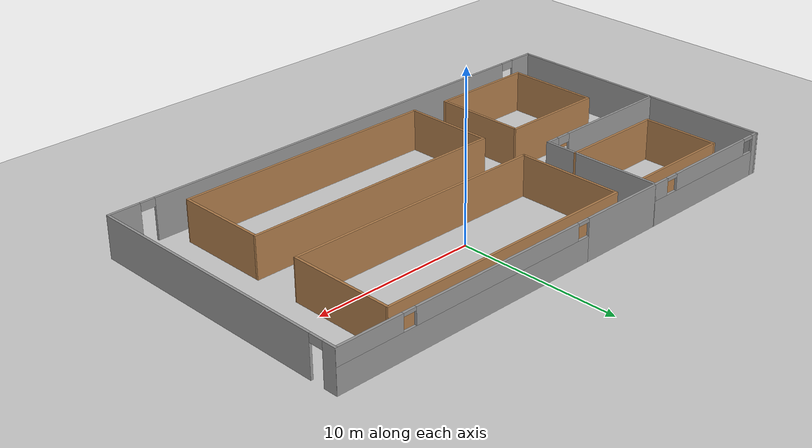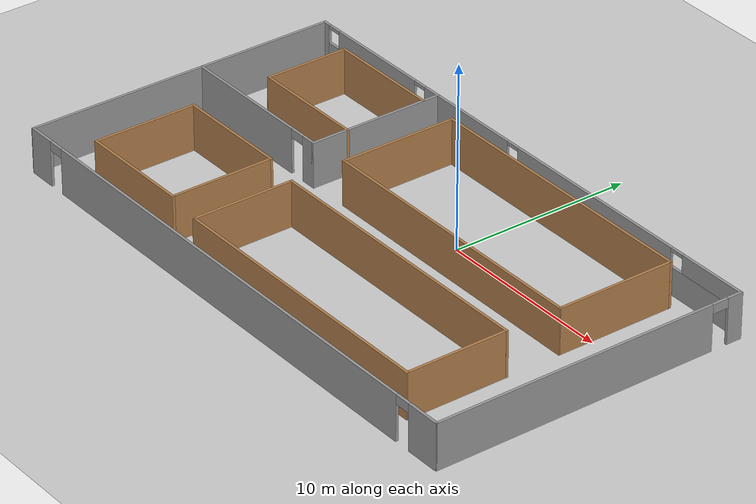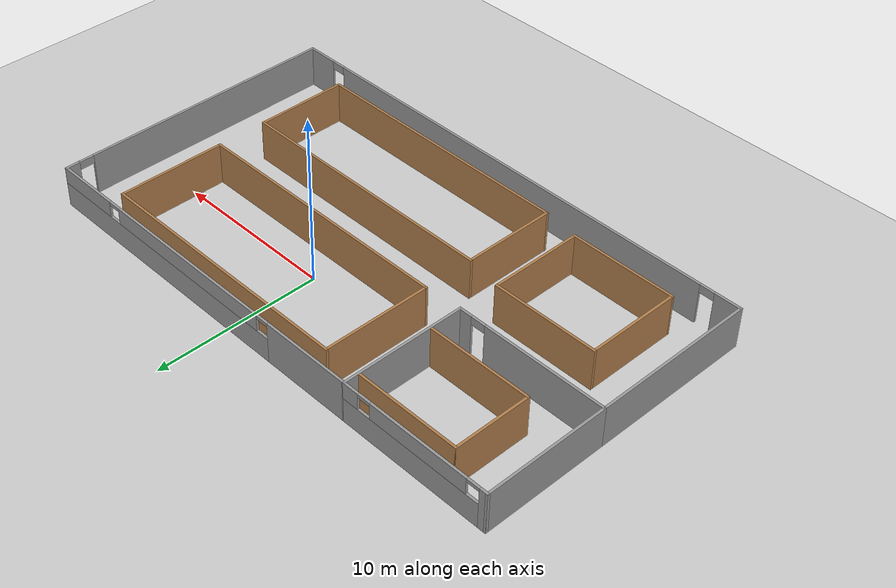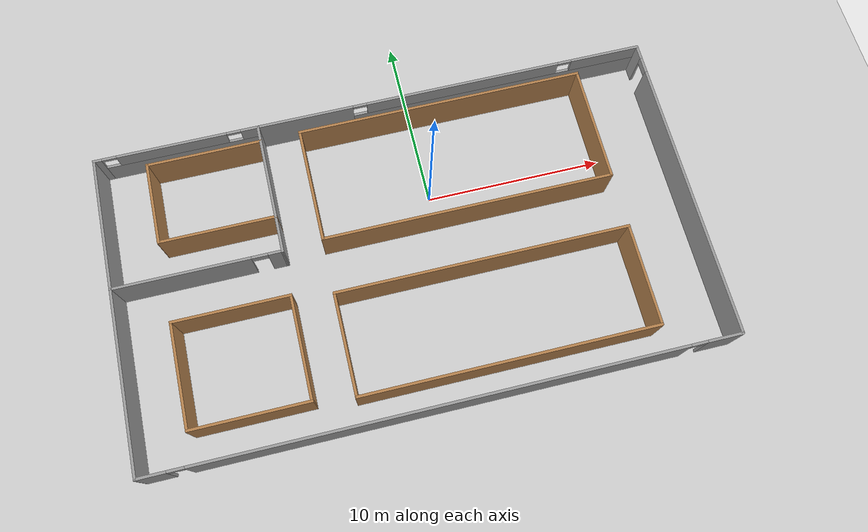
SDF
<sdf version="1.6">
 <world name="default">
  <light name="sun" type="directional">
   <pose>0 0 10 0 -0 0</pose>
   <diffuse>0.8 0.8 0.8 1</diffuse>
   <specular>0.2 0.2 0.2 1</specular>
   <attenuation>
    <range>1000</range>
    <constant>0.9</constant>
    <linear>0.01</linear>
    <quadratic>0.001</quadratic>
   </attenuation>
   <direction>-0.5 0.1 -0.9</direction>
  </light>
  <model name="ground_plane">
   <static>1</static>
   <link name="link">
    <collision name="collision">
     <geometry><plane><normal>0 0 1</normal><size>100 100</size></plane></geometry>
     <surface><friction><ode><mu>100</mu><mu2>50</mu2></ode></friction></surface>
    </collision>
    <visual name="visual">
     <cast_shadows>0</cast_shadows>
     <geometry><plane><normal>0 0 1</normal><size>100 100</size></plane></geometry>
     <material>
      <script><uri>file://media/materials/scripts/gazebo.material</uri><name>Gazebo/Grey</name></script>
     </material>
    </visual>
   </link>
  </model>
  <gravity>0 0 -9.8</gravity>
  <magnetic_field>6e-06 2.3e-05 -4.2e-05</magnetic_field>
  <atmosphere type="adiabatic"/>
  <physics name="default_physics" default="0" type="ode">
   <max_step_size>0.001</max_step_size>
   <real_time_factor>1</real_time_factor>
   <real_time_update_rate>1000</real_time_update_rate>
  </physics>
  <scene><ambient>0.4 0.4 0.4 1</ambient><background>0.7 0.7 0.7 1</background><shadows>1</shadows></scene>
  <audio><device>default</device></audio>
  <spherical_coordinates>
   <surface_model>EARTH_WGS84</surface_model>
   <latitude_deg>0</latitude_deg>
   <longitude_deg>0</longitude_deg>
   <elevation>0</elevation>
   <heading_deg>0</heading_deg>
  </spherical_coordinates>
  <model name="archives">
   <pose>-2.0604 -3.14961 0 0 -0 0</pose>
   <link name="Wall_0">
    <pose>-11.1596 8.69684 0 0 0 -3.2e-05</pose>
    <visual name="Wall_0_Visual_0">
     <pose>-4.41796 0 1.25 0 -0 0</pose>
     <geometry><box><size>0.514074 0.15 2.5</size></box></geometry>
     <material>
      <script><uri>file://media/materials/scripts/gazebo.material</uri><name>Gazebo/Grey</name></script>
      <ambient>1 1 1 1</ambient>
     </material>
    </visual>
    <collision name="Wall_0_Collision_0">
     <geometry><box><size>0.514074 0.15 2.5</size></box></geometry>
     <pose>-4.41796 0 1.25 0 -0 0</pose>
    </collision>
    <visual name="Wall_0_Visual_1">
     <pose>0.257037 0 0.75 0 -0 0</pose>
     <geometry><box><size>8.83593 0.15 1.5</size></box></geometry>
     <material>
      <script><uri>file://media/materials/scripts/gazebo.material</uri><name>Gazebo/Grey</name></script>
      <ambient>1 1 1 1</ambient>
     </material>
    </visual>
    <collision name="Wall_0_Collision_1">
     <geometry><box><size>8.83593 0.15 1.5</size></box></geometry>
     <pose>0.257037 0 0.75 0 -0 0</pose>
    </collision>
    <visual name="Wall_0_Visual_2">
     <pose>-0.271658 0 2 0 -0 0</pose>
     <geometry><box><size>6.17854 0.15 1</size></box></geometry>
     <material>
      <script><uri>file://media/materials/scripts/gazebo.material</uri><name>Gazebo/Grey</name></script>
      <ambient>1 1 1 1</ambient>
     </material>
    </visual>
    <collision name="Wall_0_Collision_2">
     <geometry><box><size>6.17854 0.15 1</size></box></geometry>
     <pose>-0.271658 0 2 0 -0 0</pose>
    </collision>
    <visual name="Wall_0_Visual_3">
     <pose>4.1463 0 2 0 -0 0</pose>
     <geometry><box><size>1.05739 0.15 1</size></box></geometry>
     <material>
      <script><uri>file://media/materials/scripts/gazebo.material</uri><name>Gazebo/Grey</name></script>
      <ambient>1 1 1 1</ambient>
     </material>
    </visual>
    <collision name="Wall_0_Collision_3">
     <geometry><box><size>1.05739 0.15 1</size></box></geometry>
     <pose>4.1463 0 2 0 -0 0</pose>
    </collision>
    <visual name="Wall_0_Visual_4">
     <pose>-3.76093 0 2.4 0 -0 0</pose>
     <geometry><box><size>0.8 0.15 0.2</size></box></geometry>
     <material>
      <script><uri>file://media/materials/scripts/gazebo.material</uri><name>Gazebo/Grey</name></script>
      <ambient>1 1 1 1</ambient>
     </material>
    </visual>
    <collision name="Wall_0_Collision_4">
     <geometry><box><size>0.8 0.15 0.2</size></box></geometry>
     <pose>-3.76093 0 2.4 0 -0 0</pose>
    </collision>
    <visual name="Wall_0_Visual_5">
     <pose>3.21761 0 2.4 0 -0 0</pose>
     <geometry><box><size>0.8 0.15 0.2</size></box></geometry>
     <material>
      <script><uri>file://media/materials/scripts/gazebo.material</uri><name>Gazebo/Grey</name></script>
      <ambient>1 1 1 1</ambient>
     </material>
    </visual>
    <collision name="Wall_0_Collision_5">
     <geometry><box><size>0.8 0.15 0.2</size></box></geometry>
     <pose>3.21761 0 2.4 0 -0 0</pose>
    </collision>
   </link>
   <link name="Wall_16">
    <collision name="Wall_16_Collision">
     <geometry><box><size>6.5 0.15 2.5</size></box></geometry>
     <pose>0 0 1.25 0 -0 0</pose>
    </collision>
    <visual name="Wall_16_Visual">
     <pose>0 0 1.25 0 -0 0</pose>
     <geometry><box><size>6.5 0.15 2.5</size></box></geometry>
     <material>
      <script><uri>file://media/materials/scripts/gazebo.material</uri><name>Gazebo/Wood</name></script>
      <ambient>1 1 1 1</ambient>
     </material>
    </visual>
    <pose>-9.75368 7.79887 0 0 -0 0</pose>
   </link>
   <link name="Wall_2">
    <collision name="Wall_2_Collision">
     <geometry><box><size>7.66 0.15 2.5</size></box></geometry>
     <pose>0 0 1.25 0 -0 0</pose>
    </collision>
    <visual name="Wall_2_Visual">
     <pose>0 0 1.25 0 -0 0</pose>
     <geometry><box><size>7.66 0.15 2.5</size></box></geometry>
     <material>
      <script><uri>file://media/materials/scripts/gazebo.material</uri><name>Gazebo/Grey</name></script>
      <ambient>1 1 1 1</ambient>
     </material>
    </visual>
    <pose>-15.7595 4.94199 0 0 0 -1.5708</pose>
   </link>
   <link name="Wall_24">
    <collision name="Wall_24_Collision">
     <geometry><box><size>4.75 0.15 2.5</size></box></geometry>
     <pose>0 0 1.25 0 -0 0</pose>
    </collision>
    <visual name="Wall_24_Visual">
     <pose>0 0 1.25 0 -0 0</pose>
     <geometry><box><size>4.75 0.15 2.5</size></box></geometry>
     <material>
      <script><uri>file://media/materials/scripts/gazebo.material</uri><name>Gazebo/Wood</name></script>
      <ambient>1 1 1 1</ambient>
     </material>
    </visual>
    <pose>-12.9287 5.49887 0 0 0 -1.5708</pose>
   </link>
   <link name="Wall_26">
    <collision name="Wall_26_Collision">
     <geometry><box><size>6.5 0.15 2.5</size></box></geometry>
     <pose>0 0 1.25 0 -0 0</pose>
    </collision>
    <visual name="Wall_26_Visual">
     <pose>0 0 1.25 0 -0 0</pose>
     <geometry><box><size>6.5 0.15 2.5</size></box></geometry>
     <material>
      <script><uri>file://media/materials/scripts/gazebo.material</uri><name>Gazebo/Wood</name></script>
      <ambient>1 1 1 1</ambient>
     </material>
    </visual>
    <pose>-9.73415 3.19263 0 0 -0 0</pose>
   </link>
   <link name="Wall_30">
    <collision name="Wall_30_Collision">
     <geometry><box><size>9.92 0.15 2.5</size></box></geometry>
     <pose>0 0 1.25 0 -0 0</pose>
    </collision>
    <visual name="Wall_30_Visual">
     <pose>0 0 1.25 0 -0 0</pose>
     <geometry><box><size>9.92 0.15 2.5</size></box></geometry>
     <material>
      <script><uri>file://media/materials/scripts/gazebo.material</uri><name>Gazebo/Grey</name></script>
      <ambient>1 1 1 1</ambient>
     </material>
    </visual>
    <pose>-15.7615 -3.81005 0 0 0 -1.5708</pose>
   </link>
   <link name="Wall_36">
    <collision name="Wall_36_Collision">
     <geometry><box><size>6.5 0.15 2.5</size></box></geometry>
     <pose>0 0 1.25 0 -0 0</pose>
    </collision>
    <visual name="Wall_36_Visual">
     <pose>0 0 1.25 0 -0 0</pose>
     <geometry><box><size>6.5 0.15 2.5</size></box></geometry>
     <material>
      <script><uri>file://media/materials/scripts/gazebo.material</uri><name>Gazebo/Wood</name></script>
      <ambient>1 1 1 1</ambient>
     </material>
    </visual>
    <pose>-9.76144 -1.31072 0 0 -0 0</pose>
   </link>
   <link name="Wall_38">
    <collision name="Wall_38_Collision">
     <geometry><box><size>5.52 0.15 2.5</size></box></geometry>
     <pose>0 0 1.25 0 -0 0</pose>
    </collision>
    <visual name="Wall_38_Visual">
     <pose>0 0 1.25 0 -0 0</pose>
     <geometry><box><size>5.52 0.15 2.5</size></box></geometry>
     <material>
      <script><uri>file://media/materials/scripts/gazebo.material</uri><name>Gazebo/Wood</name></script>
      <ambient>1 1 1 1</ambient>
     </material>
    </visual>
    <pose>-6.58642 -4.14554 0 0 0 -1.5708</pose>
   </link>
   <link name="Wall_4">
    <pose>-11.1595 1.18699 0 0 -0 0</pose>
    <visual name="Wall_4_Visual_0">
     <pose>-0.883801 0 1.25 0 -0 0</pose>
     <geometry><box><size>7.5824 0.15 2.5</size></box></geometry>
     <material>
      <script><uri>file://media/materials/scripts/gazebo.material</uri><name>Gazebo/Grey</name></script>
      <ambient>1 1 1 1</ambient>
     </material>
    </visual>
    <collision name="Wall_4_Collision_0">
     <geometry><box><size>7.5824 0.15 2.5</size></box></geometry>
     <pose>-0.883801 0 1.25 0 -0 0</pose>
    </collision>
    <visual name="Wall_4_Visual_1">
     <pose>4.2412 0 1.25 0 -0 0</pose>
     <geometry><box><size>0.867602 0.15 2.5</size></box></geometry>
     <material>
      <script><uri>file://media/materials/scripts/gazebo.material</uri><name>Gazebo/Grey</name></script>
      <ambient>1 1 1 1</ambient>
     </material>
    </visual>
    <collision name="Wall_4_Collision_1">
     <geometry><box><size>0.867602 0.15 2.5</size></box></geometry>
     <pose>4.2412 0 1.25 0 -0 0</pose>
    </collision>
    <visual name="Wall_4_Visual_2">
     <pose>3.3574 0 2.25 0 -0 0</pose>
     <geometry><box><size>0.9 0.15 0.5</size></box></geometry>
     <material>
      <script><uri>file://media/materials/scripts/gazebo.material</uri><name>Gazebo/Grey</name></script>
      <ambient>1 1 1 1</ambient>
     </material>
    </visual>
    <collision name="Wall_4_Collision_2">
     <geometry><box><size>0.9 0.15 0.5</size></box></geometry>
     <pose>3.3574 0 2.25 0 -0 0</pose>
    </collision>
   </link>
   <link name="Wall_40">
    <collision name="Wall_40_Collision">
     <geometry><box><size>5.52 0.15 2.5</size></box></geometry>
     <pose>0 0 1.25 0 -0 0</pose>
    </collision>
    <visual name="Wall_40_Visual">
     <pose>0 0 1.25 0 -0 0</pose>
     <geometry><box><size>5.52 0.15 2.5</size></box></geometry>
     <material>
      <script><uri>file://media/materials/scripts/gazebo.material</uri><name>Gazebo/Wood</name></script>
      <ambient>1 1 1 1</ambient>
     </material>
    </visual>
    <pose>-12.9361 -4.14531 0 0 0 -1.5708</pose>
   </link>
   <link name="Wall_42">
    <collision name="Wall_42_Collision">
     <geometry><box><size>6.5 0.15 2.5</size></box></geometry>
     <pose>0 0 1.25 0 -0 0</pose>
    </collision>
    <visual name="Wall_42_Visual">
     <pose>0 0 1.25 0 -0 0</pose>
     <geometry><box><size>6.5 0.15 2.5</size></box></geometry>
     <material>
      <script><uri>file://media/materials/scripts/gazebo.material</uri><name>Gazebo/Wood</name></script>
      <ambient>1 1 1 1</ambient>
     </material>
    </visual>
    <pose>-9.7587 -6.97204 0 0 -0 0</pose>
   </link>
   <link name="Wall_44">
    <pose>0.003417 -8.69699 0 0 -0 0</pose>
    <visual name="Wall_44_Visual_0">
     <pose>-15.0091 0 1.25 0 -0 0</pose>
     <geometry><box><size>1.58177 0.15 2.5</size></box></geometry>
     <material>
      <script><uri>file://media/materials/scripts/gazebo.material</uri><name>Gazebo/Grey</name></script>
      <ambient>1 1 1 1</ambient>
     </material>
    </visual>
    <collision name="Wall_44_Collision_0">
     <geometry><box><size>1.58177 0.15 2.5</size></box></geometry>
     <pose>-15.0091 0 1.25 0 -0 0</pose>
    </collision>
    <visual name="Wall_44_Visual_1">
     <pose>-0.185174 0 1.25 0 -0 0</pose>
     <geometry><box><size>26.2661 0.15 2.5</size></box></geometry>
     <material>
      <script><uri>file://media/materials/scripts/gazebo.material</uri><name>Gazebo/Grey</name></script>
      <ambient>1 1 1 1</ambient>
     </material>
    </visual>
    <collision name="Wall_44_Collision_1">
     <geometry><box><size>26.2661 0.15 2.5</size></box></geometry>
     <pose>-0.185174 0 1.25 0 -0 0</pose>
    </collision>
    <visual name="Wall_44_Visual_2">
     <pose>14.8239 0 1.25 0 -0 0</pose>
     <geometry><box><size>1.95212 0.15 2.5</size></box></geometry>
     <material>
      <script><uri>file://media/materials/scripts/gazebo.material</uri><name>Gazebo/Grey</name></script>
      <ambient>1 1 1 1</ambient>
     </material>
    </visual>
    <collision name="Wall_44_Collision_2">
     <geometry><box><size>1.95212 0.15 2.5</size></box></geometry>
     <pose>14.8239 0 1.25 0 -0 0</pose>
    </collision>
    <visual name="Wall_44_Visual_3">
     <pose>-13.7682 0 2.25 0 -0 0</pose>
     <geometry><box><size>0.9 0.15 0.5</size></box></geometry>
     <material>
      <script><uri>file://media/materials/scripts/gazebo.material</uri><name>Gazebo/Grey</name></script>
      <ambient>1 1 1 1</ambient>
     </material>
    </visual>
    <collision name="Wall_44_Collision_3">
     <geometry><box><size>0.9 0.15 0.5</size></box></geometry>
     <pose>-13.7682 0 2.25 0 -0 0</pose>
    </collision>
    <visual name="Wall_44_Visual_4">
     <pose>13.3979 0 2.25 0 -0 0</pose>
     <geometry><box><size>0.9 0.15 0.5</size></box></geometry>
     <material>
      <script><uri>file://media/materials/scripts/gazebo.material</uri><name>Gazebo/Grey</name></script>
      <ambient>1 1 1 1</ambient>
     </material>
    </visual>
    <collision name="Wall_44_Collision_4">
     <geometry><box><size>0.9 0.15 0.5</size></box></geometry>
     <pose>13.3979 0 2.25 0 -0 0</pose>
    </collision>
   </link>
   <link name="Wall_46">
    <pose>4.67243 8.69585 0 0 -0 0</pose>
    <visual name="Wall_46_Visual_0">
     <pose>-8.46283 0 1.25 0 -0 0</pose>
     <geometry><box><size>5.39434 0.15 2.5</size></box></geometry>
     <material>
      <script><uri>file://media/materials/scripts/gazebo.material</uri><name>Gazebo/Grey</name></script>
      <ambient>1 1 1 1</ambient>
     </material>
    </visual>
    <collision name="Wall_46_Collision_0">
     <geometry><box><size>5.39434 0.15 2.5</size></box></geometry>
     <pose>-8.46283 0 1.25 0 -0 0</pose>
    </collision>
    <visual name="Wall_46_Visual_1">
     <pose>2.69717 0 0.75 0 -0 0</pose>
     <geometry><box><size>16.9257 0.15 1.5</size></box></geometry>
     <material>
      <script><uri>file://media/materials/scripts/gazebo.material</uri><name>Gazebo/Grey</name></script>
      <ambient>1 1 1 1</ambient>
     </material>
    </visual>
    <collision name="Wall_46_Collision_1">
     <geometry><box><size>16.9257 0.15 1.5</size></box></geometry>
     <pose>2.69717 0 0.75 0 -0 0</pose>
    </collision>
    <visual name="Wall_46_Visual_2">
     <pose>0.66837 0 2 0 -0 0</pose>
     <geometry><box><size>11.2681 0.15 1</size></box></geometry>
     <material>
      <script><uri>file://media/materials/scripts/gazebo.material</uri><name>Gazebo/Grey</name></script>
      <ambient>1 1 1 1</ambient>
     </material>
    </visual>
    <collision name="Wall_46_Collision_2">
     <geometry><box><size>11.2681 0.15 1</size></box></geometry>
     <pose>0.66837 0 2 0 -0 0</pose>
    </collision>
    <visual name="Wall_46_Visual_3">
     <pose>9.1312 0 2 0 -0 0</pose>
     <geometry><box><size>4.0576 0.15 1</size></box></geometry>
     <material>
      <script><uri>file://media/materials/scripts/gazebo.material</uri><name>Gazebo/Grey</name></script>
      <ambient>1 1 1 1</ambient>
     </material>
    </visual>
    <collision name="Wall_46_Collision_3">
     <geometry><box><size>4.0576 0.15 1</size></box></geometry>
     <pose>9.1312 0 2 0 -0 0</pose>
    </collision>
    <visual name="Wall_46_Visual_4">
     <pose>-5.36566 0 2.4 0 -0 0</pose>
     <geometry><box><size>0.8 0.15 0.2</size></box></geometry>
     <material>
      <script><uri>file://media/materials/scripts/gazebo.material</uri><name>Gazebo/Grey</name></script>
      <ambient>1 1 1 1</ambient>
     </material>
    </visual>
    <collision name="Wall_46_Collision_4">
     <geometry><box><size>0.8 0.15 0.2</size></box></geometry>
     <pose>-5.36566 0 2.4 0 -0 0</pose>
    </collision>
    <visual name="Wall_46_Visual_5">
     <pose>6.7024 0 2.4 0 -0 0</pose>
     <geometry><box><size>0.8 0.15 0.2</size></box></geometry>
     <material>
      <script><uri>file://media/materials/scripts/gazebo.material</uri><name>Gazebo/Grey</name></script>
      <ambient>1 1 1 1</ambient>
     </material>
    </visual>
    <collision name="Wall_46_Collision_5">
     <geometry><box><size>0.8 0.15 0.2</size></box></geometry>
     <pose>6.7024 0 2.4 0 -0 0</pose>
    </collision>
   </link>
   <link name="Wall_52">
    <collision name="Wall_52_Collision">
     <geometry><box><size>16.353 0.15 2.5</size></box></geometry>
     <pose>0 0 1.25 0 -0 0</pose>
    </collision>
    <visual name="Wall_52_Visual">
     <pose>0 0 1.25 0 -0 0</pose>
     <geometry><box><size>16.353 0.15 2.5</size></box></geometry>
     <material>
      <script><uri>file://media/materials/scripts/gazebo.material</uri><name>Gazebo/Wood</name></script>
      <ambient>1 1 1 1</ambient>
     </material>
    </visual>
    <pose>3.76505 7.83299 0 0 -0 0</pose>
   </link>
   <link name="Wall_54">
    <collision name="Wall_54_Collision">
     <geometry><box><size>6.445 0.15 2.5</size></box></geometry>
     <pose>0 0 1.25 0 -0 0</pose>
    </collision>
    <visual name="Wall_54_Visual">
     <pose>0 0 1.25 0 -0 0</pose>
     <geometry><box><size>6.445 0.15 2.5</size></box></geometry>
     <material>
      <script><uri>file://media/materials/scripts/gazebo.material</uri><name>Gazebo/Wood</name></script>
      <ambient>1 1 1 1</ambient>
     </material>
    </visual>
    <pose>-4.33681 4.53876 0 0 0 -1.5708</pose>
   </link>
   <link name="Wall_56">
    <collision name="Wall_56_Collision">
     <geometry><box><size>16.35 0.15 2.5</size></box></geometry>
     <pose>0 0 1.25 0 -0 0</pose>
    </collision>
    <visual name="Wall_56_Visual">
     <pose>0 0 1.25 0 -0 0</pose>
     <geometry><box><size>16.35 0.15 2.5</size></box></geometry>
     <material>
      <script><uri>file://media/materials/scripts/gazebo.material</uri><name>Gazebo/Wood</name></script>
      <ambient>1 1 1 1</ambient>
     </material>
    </visual>
    <pose>3.76265 1.35644 0 0 -0 0</pose>
   </link>
   <link name="Wall_58">
    <collision name="Wall_58_Collision">
     <geometry><box><size>6.46 0.15 2.5</size></box></geometry>
     <pose>0 0 1.25 0 -0 0</pose>
    </collision>
    <visual name="Wall_58_Visual">
     <pose>0 0 1.25 0 -0 0</pose>
     <geometry><box><size>6.46 0.15 2.5</size></box></geometry>
     <material>
      <script><uri>file://media/materials/scripts/gazebo.material</uri><name>Gazebo/Wood</name></script>
      <ambient>1 1 1 1</ambient>
     </material>
    </visual>
    <pose>11.8641 4.56887 0 0 0 -1.5708</pose>
   </link>
   <link name="Wall_6">
    <collision name="Wall_6_Collision">
     <geometry><box><size>7.6597 0.15 2.5</size></box></geometry>
     <pose>0 0 1.25 0 -0 0</pose>
    </collision>
    <visual name="Wall_6_Visual">
     <pose>0 0 1.25 0 -0 0</pose>
     <geometry><box><size>7.6597 0.15 2.5</size></box></geometry>
     <material>
      <script><uri>file://media/materials/scripts/gazebo.material</uri><name>Gazebo/Grey</name></script>
      <ambient>1 1 1 1</ambient>
     </material>
    </visual>
    <pose>-6.55959 4.94184 0 0 0 -1.57076</pose>
   </link>
   <link name="Wall_62">
    <collision name="Wall_62_Collision">
     <geometry><box><size>16.36 0.15 2.5</size></box></geometry>
     <pose>0 0 1.25 0 -0 0</pose>
    </collision>
    <visual name="Wall_62_Visual">
     <pose>0 0 1.25 0 -0 0</pose>
     <geometry><box><size>16.36 0.15 2.5</size></box></geometry>
     <material>
      <script><uri>file://media/materials/scripts/gazebo.material</uri><name>Gazebo/Wood</name></script>
      <ambient>1 1 1 1</ambient>
     </material>
    </visual>
    <pose>3.75015 -1.72598 0 0 -0 0</pose>
   </link>
   <link name="Wall_66">
    <collision name="Wall_66_Collision">
     <geometry><box><size>5.52 0.15 2.5</size></box></geometry>
     <pose>0 0 1.25 0 -0 0</pose>
    </collision>
    <visual name="Wall_66_Visual">
     <pose>0 0 1.25 0 -0 0</pose>
     <geometry><box><size>5.52 0.15 2.5</size></box></geometry>
     <material>
      <script><uri>file://media/materials/scripts/gazebo.material</uri><name>Gazebo/Wood</name></script>
      <ambient>1 1 1 1</ambient>
     </material>
    </visual>
    <pose>-4.35513 -4.55536 0 0 0 -1.5708</pose>
   </link>
   <link name="Wall_68">
    <collision name="Wall_68_Collision">
     <geometry><box><size>16.35 0.15 2.5</size></box></geometry>
     <pose>0 0 1.25 0 -0 0</pose>
    </collision>
    <visual name="Wall_68_Visual">
     <pose>0 0 1.25 0 -0 0</pose>
     <geometry><box><size>16.35 0.15 2.5</size></box></geometry>
     <material>
      <script><uri>file://media/materials/scripts/gazebo.material</uri><name>Gazebo/Wood</name></script>
      <ambient>1 1 1 1</ambient>
     </material>
    </visual>
    <pose>3.7433 -7.29576 0 0 -0 0</pose>
   </link>
   <link name="Wall_70">
    <collision name="Wall_70_Collision">
     <geometry><box><size>5.52 0.15 2.5</size></box></geometry>
     <pose>0 0 1.25 0 -0 0</pose>
    </collision>
    <visual name="Wall_70_Visual">
     <pose>0 0 1.25 0 -0 0</pose>
     <geometry><box><size>5.52 0.15 2.5</size></box></geometry>
     <material>
      <script><uri>file://media/materials/scripts/gazebo.material</uri><name>Gazebo/Wood</name></script>
      <ambient>1 1 1 1</ambient>
     </material>
    </visual>
    <pose>11.8509 -4.55365 0 0 0 -1.5708</pose>
   </link>
   <link name="Wall_72">
    <pose>15.7615 0.019987 0 0 0 -1.5708</pose>
    <visual name="Wall_72_Visual_0">
     <pose>-8.31261 0 1.25 0 -0 0</pose>
     <geometry><box><size>0.864783 0.15 2.5</size></box></geometry>
     <material>
      <script><uri>file://media/materials/scripts/gazebo.material</uri><name>Gazebo/Grey</name></script>
      <ambient>1 1 1 1</ambient>
     </material>
    </visual>
    <collision name="Wall_72_Collision_0">
     <geometry><box><size>0.864783 0.15 2.5</size></box></geometry>
     <pose>-8.31261 0 1.25 0 -0 0</pose>
    </collision>
    <visual name="Wall_72_Visual_1">
     <pose>0.882392 0 1.25 0 -0 0</pose>
     <geometry><box><size>15.7252 0.15 2.5</size></box></geometry>
     <material>
      <script><uri>file://media/materials/scripts/gazebo.material</uri><name>Gazebo/Grey</name></script>
      <ambient>1 1 1 1</ambient>
     </material>
    </visual>
    <collision name="Wall_72_Collision_1">
     <geometry><box><size>15.7252 0.15 2.5</size></box></geometry>
     <pose>0.882392 0 1.25 0 -0 0</pose>
    </collision>
    <visual name="Wall_72_Visual_2">
     <pose>-7.43022 0 2.25 0 -0 0</pose>
     <geometry><box><size>0.9 0.15 0.5</size></box></geometry>
     <material>
      <script><uri>file://media/materials/scripts/gazebo.material</uri><name>Gazebo/Grey</name></script>
      <ambient>1 1 1 1</ambient>
     </material>
    </visual>
    <collision name="Wall_72_Collision_2">
     <geometry><box><size>0.9 0.15 0.5</size></box></geometry>
     <pose>-7.43022 0 2.25 0 -0 0</pose>
    </collision>
   </link>
   <static>1</static>
  </model>
 </world>
</sdf>
